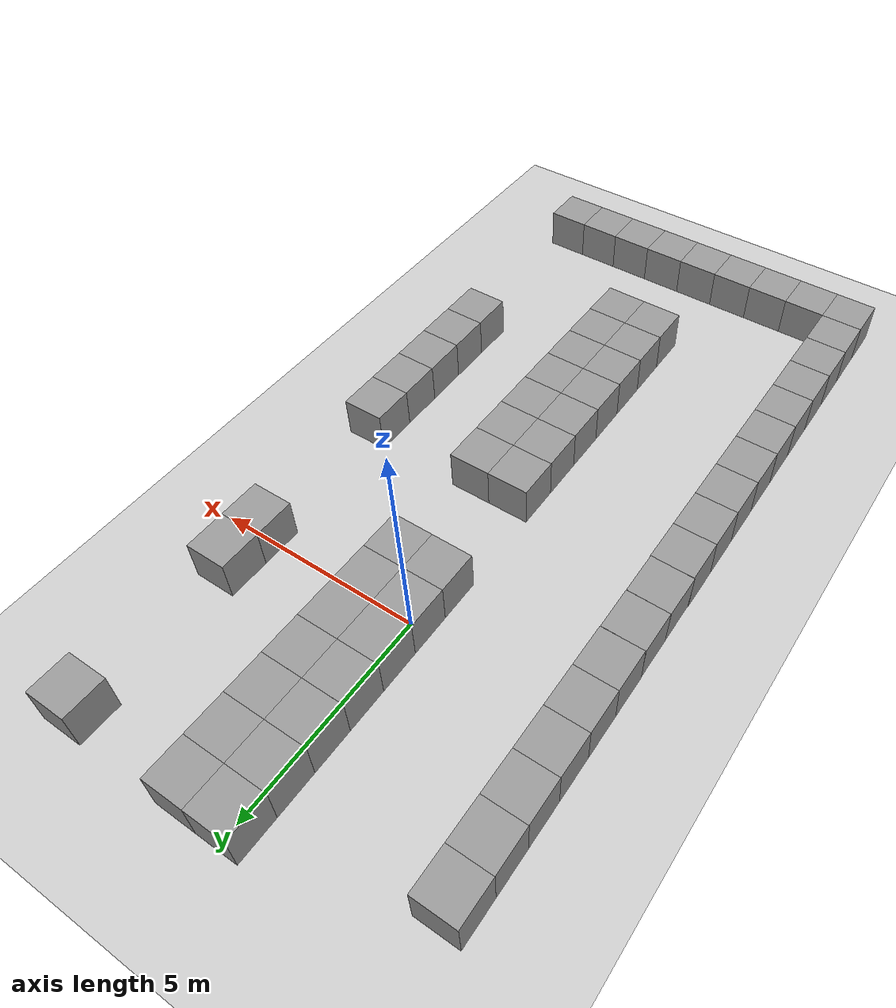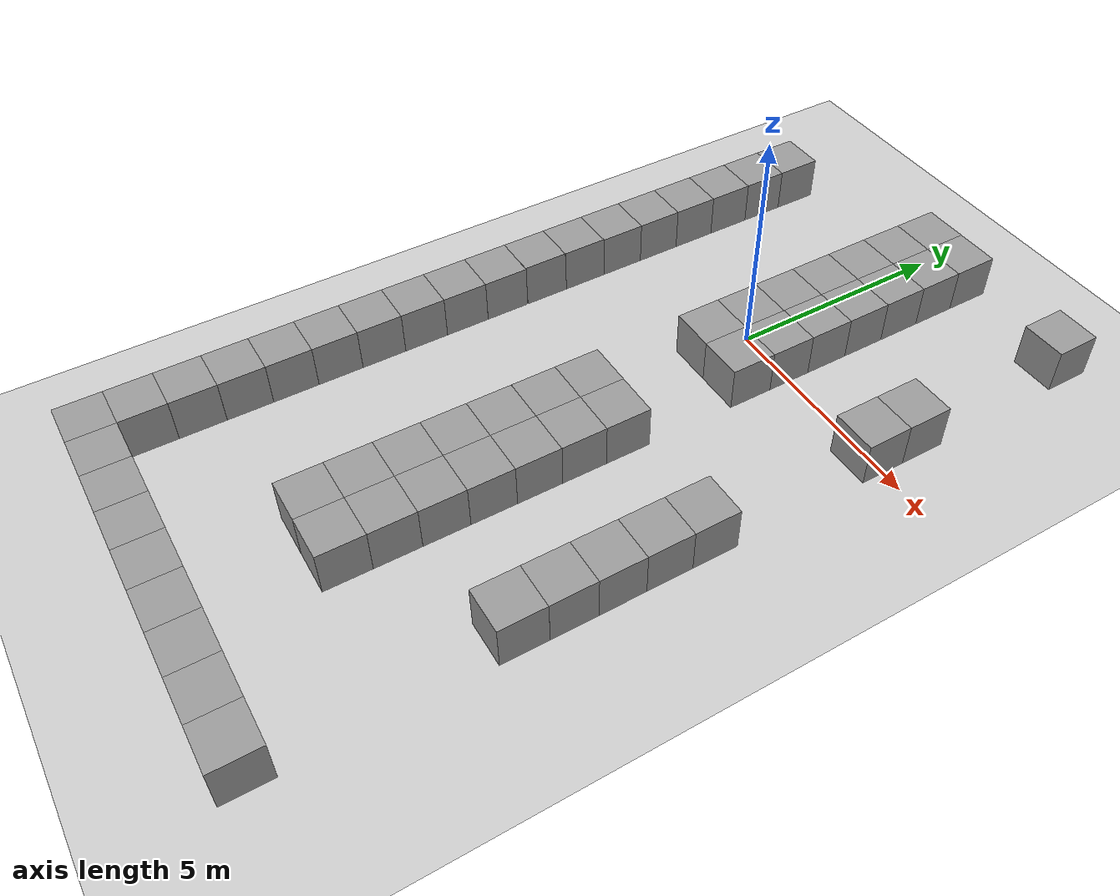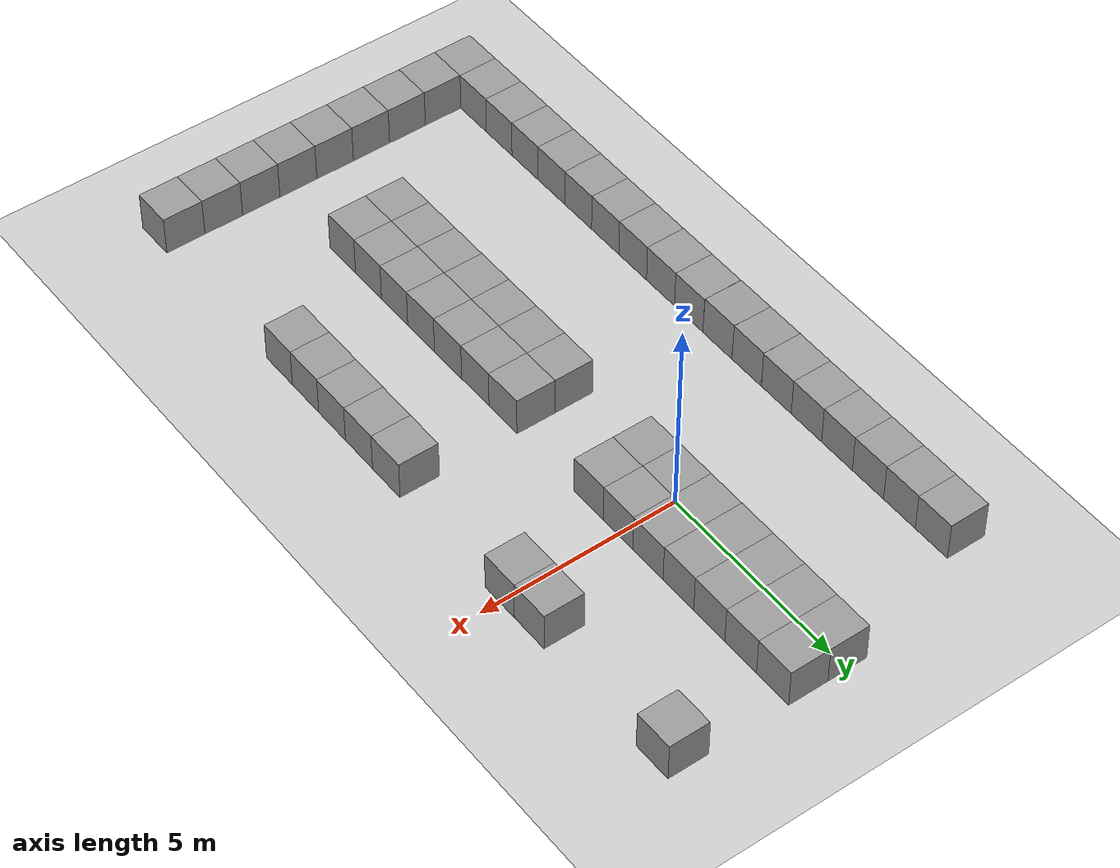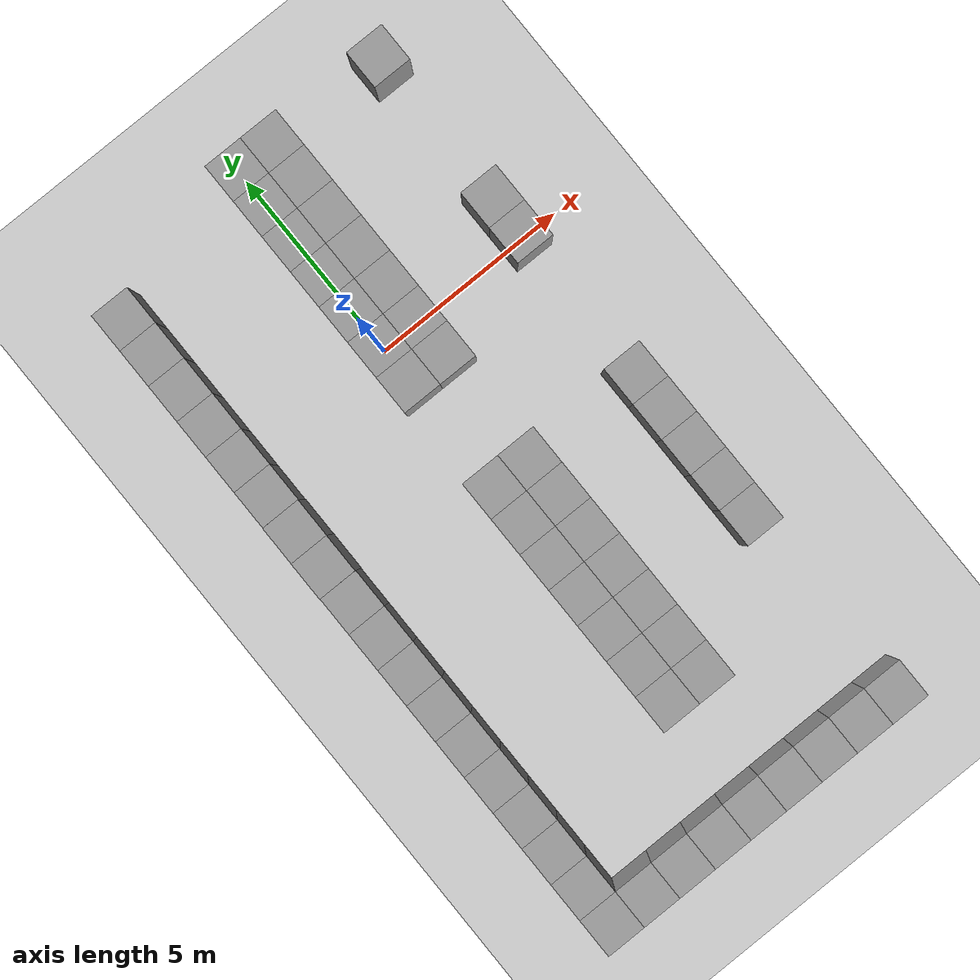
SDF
<sdf version="1.4">
 <world name="default">
  <model name="ground_plane">
   <static>1</static>
   <link name="link">
    <collision name="collision">
     <geometry><plane><normal>0 0 1</normal><size>100 100</size></plane></geometry>
     <surface><friction><ode><mu>100</mu><mu2>50</mu2></ode></friction></surface>
    </collision>
    <visual name="visual">
     <cast_shadows>0</cast_shadows>
     <geometry><plane><normal>0 0 1</normal><size>100 100</size></plane></geometry>
     <material>
      <script><uri>file://media/materials/scripts/gazebo.material</uri><name>Gazebo/Grey</name></script>
     </material>
    </visual>
    <velocity_decay><linear>0</linear><angular>0</angular></velocity_decay>
   </link>
  </model>
  <model name="unit_box_251">
   <pose>-4.00002 -13 0.5 1.61559e-27 -1e-06 -1.2e-05</pose>
   <static>1</static>
   <link name="link">
    <inertial>
     <mass>1</mass>
     <inertia><ixx>1</ixx><ixy>0</ixy><ixz>0</ixz><iyy>1</iyy><iyz>0</iyz><izz>1</izz></inertia>
    </inertial>
    <collision name="collision"><geometry><box><size>1 1 1</size></box></geometry></collision>
    <visual name="visual">
     <geometry><box><size>1 1 1</size></box></geometry>
     <material>
      <script><uri>file://media/materials/scripts/gazebo.material</uri><name>Gazebo/Grey</name></script>
     </material>
    </visual>
    <velocity_decay><linear>0</linear><angular>0</angular></velocity_decay>
   </link>
   <static>1</static>
  </model>
  <model name="unit_box_252">
   <pose>-3.00002 -13 0.5 0 0 -1.1e-05</pose>
   <static>1</static>
   <link name="link">
    <inertial>
     <mass>1</mass>
     <inertia><ixx>1</ixx><ixy>0</ixy><ixz>0</ixz><iyy>1</iyy><iyz>0</iyz><izz>1</izz></inertia>
    </inertial>
    <collision name="collision"><geometry><box><size>1 1 1</size></box></geometry></collision>
    <visual name="visual">
     <geometry><box><size>1 1 1</size></box></geometry>
     <material>
      <script><uri>file://media/materials/scripts/gazebo.material</uri><name>Gazebo/Grey</name></script>
     </material>
    </visual>
    <velocity_decay><linear>0</linear><angular>0</angular></velocity_decay>
   </link>
   <static>1</static>
  </model>
  <model name="unit_box_253">
   <pose>-2.00001 -13 0.5 0 0 -1e-05</pose>
   <static>1</static>
   <link name="link">
    <inertial>
     <mass>1</mass>
     <inertia><ixx>1</ixx><ixy>0</ixy><ixz>0</ixz><iyy>1</iyy><iyz>0</iyz><izz>1</izz></inertia>
    </inertial>
    <collision name="collision"><geometry><box><size>1 1 1</size></box></geometry></collision>
    <visual name="visual">
     <geometry><box><size>1 1 1</size></box></geometry>
     <material>
      <script><uri>file://media/materials/scripts/gazebo.material</uri><name>Gazebo/Grey</name></script>
     </material>
    </visual>
    <velocity_decay><linear>0</linear><angular>0</angular></velocity_decay>
   </link>
   <static>1</static>
  </model>
  <model name="unit_box_254">
   <pose>-1.00001 -13 0.5 0 0 -1e-05</pose>
   <static>1</static>
   <link name="link">
    <inertial>
     <mass>1</mass>
     <inertia><ixx>1</ixx><ixy>0</ixy><ixz>0</ixz><iyy>1</iyy><iyz>0</iyz><izz>1</izz></inertia>
    </inertial>
    <collision name="collision"><geometry><box><size>1 1 1</size></box></geometry></collision>
    <visual name="visual">
     <geometry><box><size>1 1 1</size></box></geometry>
     <material>
      <script><uri>file://media/materials/scripts/gazebo.material</uri><name>Gazebo/Grey</name></script>
     </material>
    </visual>
    <velocity_decay><linear>0</linear><angular>0</angular></velocity_decay>
   </link>
   <static>1</static>
  </model>
  <model name="unit_box_255">
   <pose>-1.2e-05 -12.9999 0.5 0 0 -8e-06</pose>
   <static>1</static>
   <link name="link">
    <inertial>
     <mass>1</mass>
     <inertia><ixx>1</ixx><ixy>0</ixy><ixz>0</ixz><iyy>1</iyy><iyz>0</iyz><izz>1</izz></inertia>
    </inertial>
    <collision name="collision"><geometry><box><size>1 1 1</size></box></geometry></collision>
    <visual name="visual">
     <geometry><box><size>1 1 1</size></box></geometry>
     <material>
      <script><uri>file://media/materials/scripts/gazebo.material</uri><name>Gazebo/Grey</name></script>
     </material>
    </visual>
    <velocity_decay><linear>0</linear><angular>0</angular></velocity_decay>
   </link>
   <static>1</static>
  </model>
  <model name="unit_box_256">
   <pose>0.999991 -12.9999 0.5 0 0 -7e-06</pose>
   <static>1</static>
   <link name="link">
    <inertial>
     <mass>1</mass>
     <inertia><ixx>1</ixx><ixy>0</ixy><ixz>0</ixz><iyy>1</iyy><iyz>0</iyz><izz>1</izz></inertia>
    </inertial>
    <collision name="collision"><geometry><box><size>1 1 1</size></box></geometry></collision>
    <visual name="visual">
     <geometry><box><size>1 1 1</size></box></geometry>
     <material>
      <script><uri>file://media/materials/scripts/gazebo.material</uri><name>Gazebo/Grey</name></script>
     </material>
    </visual>
    <velocity_decay><linear>0</linear><angular>0</angular></velocity_decay>
   </link>
   <static>1</static>
  </model>
  <model name="unit_box_257">
   <pose>1.99999 -12.9999 0.5 0 0 -7e-06</pose>
   <static>1</static>
   <link name="link">
    <inertial>
     <mass>1</mass>
     <inertia><ixx>1</ixx><ixy>0</ixy><ixz>0</ixz><iyy>1</iyy><iyz>0</iyz><izz>1</izz></inertia>
    </inertial>
    <collision name="collision"><geometry><box><size>1 1 1</size></box></geometry></collision>
    <visual name="visual">
     <geometry><box><size>1 1 1</size></box></geometry>
     <material>
      <script><uri>file://media/materials/scripts/gazebo.material</uri><name>Gazebo/Grey</name></script>
     </material>
    </visual>
    <velocity_decay><linear>0</linear><angular>0</angular></velocity_decay>
   </link>
   <static>1</static>
  </model>
  <model name="unit_box_258">
   <pose>2.99999 -12.9999 0.5 0 0 -5e-06</pose>
   <static>1</static>
   <link name="link">
    <inertial>
     <mass>1</mass>
     <inertia><ixx>1</ixx><ixy>0</ixy><ixz>0</ixz><iyy>1</iyy><iyz>0</iyz><izz>1</izz></inertia>
    </inertial>
    <collision name="collision"><geometry><box><size>1 1 1</size></box></geometry></collision>
    <visual name="visual">
     <geometry><box><size>1 1 1</size></box></geometry>
     <material>
      <script><uri>file://media/materials/scripts/gazebo.material</uri><name>Gazebo/Grey</name></script>
     </material>
    </visual>
    <velocity_decay><linear>0</linear><angular>0</angular></velocity_decay>
   </link>
   <static>1</static>
  </model>
  <model name="unit_box_259">
   <pose>4 -13 0.5 0 0 -5e-06</pose>
   <static>1</static>
   <link name="link">
    <inertial>
     <mass>1</mass>
     <inertia><ixx>1</ixx><ixy>0</ixy><ixz>0</ixz><iyy>1</iyy><iyz>0</iyz><izz>1</izz></inertia>
    </inertial>
    <collision name="collision"><geometry><box><size>1 1 1</size></box></geometry></collision>
    <visual name="visual">
     <geometry><box><size>1 1 1</size></box></geometry>
     <material>
      <script><uri>file://media/materials/scripts/gazebo.material</uri><name>Gazebo/Grey</name></script>
     </material>
    </visual>
    <velocity_decay><linear>0</linear><angular>0</angular></velocity_decay>
   </link>
   <static>1</static>
  </model>
  <model name="unit_box_29_0">
   <pose>-4.00004 -12 0.5 0 0 -4.6e-05</pose>
   <link name="link">
    <inertial>
     <mass>1</mass>
     <inertia><ixx>1</ixx><ixy>0</ixy><ixz>0</ixz><iyy>1</iyy><iyz>0</iyz><izz>1</izz></inertia>
    </inertial>
    <collision name="collision"><geometry><box><size>1 1 1</size></box></geometry></collision>
    <visual name="visual">
     <geometry><box><size>1 1 1</size></box></geometry>
     <material>
      <script><uri>file://media/materials/scripts/gazebo.material</uri><name>Gazebo/Grey</name></script>
     </material>
    </visual>
    <velocity_decay><linear>0</linear><angular>0</angular></velocity_decay>
   </link>
   <static>1</static>
  </model>
  <model name="unit_box_44_0">
   <pose>-3.99998 -11 0.5 0 0 -7.9e-05</pose>
   <link name="link">
    <inertial>
     <mass>1</mass>
     <inertia><ixx>1</ixx><ixy>0</ixy><ixz>0</ixz><iyy>1</iyy><iyz>0</iyz><izz>1</izz></inertia>
    </inertial>
    <collision name="collision"><geometry><box><size>1 1 1</size></box></geometry></collision>
    <visual name="visual">
     <geometry><box><size>1 1 1</size></box></geometry>
     <material>
      <script><uri>file://media/materials/scripts/gazebo.material</uri><name>Gazebo/Grey</name></script>
     </material>
    </visual>
    <velocity_decay><linear>0</linear><angular>0</angular></velocity_decay>
   </link>
   <static>1</static>
  </model>
  <model name="unit_box_45_0">
   <pose>-3.99957 -9.99996 0.5 0 0 -7.8e-05</pose>
   <link name="link">
    <inertial>
     <mass>1</mass>
     <inertia><ixx>1</ixx><ixy>0</ixy><ixz>0</ixz><iyy>1</iyy><iyz>0</iyz><izz>1</izz></inertia>
    </inertial>
    <collision name="collision"><geometry><box><size>1 1 1</size></box></geometry></collision>
    <visual name="visual">
     <geometry><box><size>1 1 1</size></box></geometry>
     <material>
      <script><uri>file://media/materials/scripts/gazebo.material</uri><name>Gazebo/Grey</name></script>
     </material>
    </visual>
    <velocity_decay><linear>0</linear><angular>0</angular></velocity_decay>
   </link>
   <static>1</static>
  </model>
  <model name="unit_box_46_0">
   <pose>-3.99972 -8.99996 0.5 0 0 -7.9e-05</pose>
   <link name="link">
    <inertial>
     <mass>1</mass>
     <inertia><ixx>1</ixx><ixy>0</ixy><ixz>0</ixz><iyy>1</iyy><iyz>0</iyz><izz>1</izz></inertia>
    </inertial>
    <collision name="collision"><geometry><box><size>1 1 1</size></box></geometry></collision>
    <visual name="visual">
     <geometry><box><size>1 1 1</size></box></geometry>
     <material>
      <script><uri>file://media/materials/scripts/gazebo.material</uri><name>Gazebo/Grey</name></script>
     </material>
    </visual>
    <velocity_decay><linear>0</linear><angular>0</angular></velocity_decay>
   </link>
   <static>1</static>
  </model>
  <model name="unit_box_47_0">
   <pose>-3.99969 -7.99996 0.5 0 0 -7.9e-05</pose>
   <link name="link">
    <inertial>
     <mass>1</mass>
     <inertia><ixx>1</ixx><ixy>0</ixy><ixz>0</ixz><iyy>1</iyy><iyz>0</iyz><izz>1</izz></inertia>
    </inertial>
    <collision name="collision"><geometry><box><size>1 1 1</size></box></geometry></collision>
    <visual name="visual">
     <geometry><box><size>1 1 1</size></box></geometry>
     <material>
      <script><uri>file://media/materials/scripts/gazebo.material</uri><name>Gazebo/Grey</name></script>
     </material>
    </visual>
    <velocity_decay><linear>0</linear><angular>0</angular></velocity_decay>
   </link>
   <static>1</static>
  </model>
  <model name="unit_box_48_0">
   <pose>-3.99926 -6.99996 0.5 0 0 -7.9e-05</pose>
   <link name="link">
    <inertial>
     <mass>1</mass>
     <inertia><ixx>1</ixx><ixy>0</ixy><ixz>0</ixz><iyy>1</iyy><iyz>0</iyz><izz>1</izz></inertia>
    </inertial>
    <collision name="collision"><geometry><box><size>1 1 1</size></box></geometry></collision>
    <visual name="visual">
     <geometry><box><size>1 1 1</size></box></geometry>
     <material>
      <script><uri>file://media/materials/scripts/gazebo.material</uri><name>Gazebo/Grey</name></script>
     </material>
    </visual>
    <velocity_decay><linear>0</linear><angular>0</angular></velocity_decay>
   </link>
   <static>1</static>
  </model>
  <model name="unit_box_49_0">
   <pose>-3.99936 -5.99995 0.5 0 0 -8.2e-05</pose>
   <link name="link">
    <inertial>
     <mass>1</mass>
     <inertia><ixx>1</ixx><ixy>0</ixy><ixz>0</ixz><iyy>1</iyy><iyz>0</iyz><izz>1</izz></inertia>
    </inertial>
    <collision name="collision"><geometry><box><size>1 1 1</size></box></geometry></collision>
    <visual name="visual">
     <geometry><box><size>1 1 1</size></box></geometry>
     <material>
      <script><uri>file://media/materials/scripts/gazebo.material</uri><name>Gazebo/Grey</name></script>
     </material>
    </visual>
    <velocity_decay><linear>0</linear><angular>0</angular></velocity_decay>
   </link>
   <static>1</static>
  </model>
  <model name="unit_box_50_0">
   <pose>-3.99937 -4.99995 0.5 0 0 -8.2e-05</pose>
   <link name="link">
    <inertial>
     <mass>1</mass>
     <inertia><ixx>1</ixx><ixy>0</ixy><ixz>0</ixz><iyy>1</iyy><iyz>0</iyz><izz>1</izz></inertia>
    </inertial>
    <collision name="collision"><geometry><box><size>1 1 1</size></box></geometry></collision>
    <visual name="visual">
     <geometry><box><size>1 1 1</size></box></geometry>
     <material>
      <script><uri>file://media/materials/scripts/gazebo.material</uri><name>Gazebo/Grey</name></script>
     </material>
    </visual>
    <velocity_decay><linear>0</linear><angular>0</angular></velocity_decay>
   </link>
   <static>1</static>
  </model>
  <model name="unit_box_51_0">
   <pose>-3.99952 -3.99982 0.5 0 -0 0.000178</pose>
   <link name="link">
    <inertial>
     <mass>1</mass>
     <inertia><ixx>1</ixx><ixy>0</ixy><ixz>0</ixz><iyy>1</iyy><iyz>0</iyz><izz>1</izz></inertia>
    </inertial>
    <collision name="collision"><geometry><box><size>1 1 1</size></box></geometry></collision>
    <visual name="visual">
     <geometry><box><size>1 1 1</size></box></geometry>
     <material>
      <script><uri>file://media/materials/scripts/gazebo.material</uri><name>Gazebo/Grey</name></script>
     </material>
    </visual>
    <velocity_decay><linear>0</linear><angular>0</angular></velocity_decay>
   </link>
   <static>1</static>
  </model>
  <model name="unit_box_53_0">
   <pose>0.999998 -9.99989 0.5 0 0 -8e-06</pose>
   <link name="link">
    <inertial>
     <mass>1</mass>
     <inertia><ixx>1</ixx><ixy>0</ixy><ixz>0</ixz><iyy>1</iyy><iyz>0</iyz><izz>1</izz></inertia>
    </inertial>
    <collision name="collision"><geometry><box><size>1 1 1</size></box></geometry></collision>
    <visual name="visual">
     <geometry><box><size>1 1 1</size></box></geometry>
     <material>
      <script><uri>file://media/materials/scripts/gazebo.material</uri><name>Gazebo/Grey</name></script>
     </material>
    </visual>
    <velocity_decay><linear>0</linear><angular>0</angular></velocity_decay>
   </link>
   <static>1</static>
  </model>
  <model name="unit_box_54_0">
   <pose>1.00002 -8.99989 0.5 0 0 -8e-06</pose>
   <link name="link">
    <inertial>
     <mass>1</mass>
     <inertia><ixx>1</ixx><ixy>0</ixy><ixz>0</ixz><iyy>1</iyy><iyz>0</iyz><izz>1</izz></inertia>
    </inertial>
    <collision name="collision"><geometry><box><size>1 1 1</size></box></geometry></collision>
    <visual name="visual">
     <geometry><box><size>1 1 1</size></box></geometry>
     <material>
      <script><uri>file://media/materials/scripts/gazebo.material</uri><name>Gazebo/Grey</name></script>
     </material>
    </visual>
    <velocity_decay><linear>0</linear><angular>0</angular></velocity_decay>
   </link>
   <static>1</static>
  </model>
  <model name="unit_box_55_0">
   <pose>1 -7.99989 0.5 0 0 -8e-06</pose>
   <link name="link">
    <inertial>
     <mass>1</mass>
     <inertia><ixx>1</ixx><ixy>0</ixy><ixz>0</ixz><iyy>1</iyy><iyz>0</iyz><izz>1</izz></inertia>
    </inertial>
    <collision name="collision"><geometry><box><size>1 1 1</size></box></geometry></collision>
    <visual name="visual">
     <geometry><box><size>1 1 1</size></box></geometry>
     <material>
      <script><uri>file://media/materials/scripts/gazebo.material</uri><name>Gazebo/Grey</name></script>
     </material>
    </visual>
    <velocity_decay><linear>0</linear><angular>0</angular></velocity_decay>
   </link>
   <static>1</static>
  </model>
  <model name="unit_box_56_0">
   <pose>1.00001 -6.99989 0.5 0 0 -7e-06</pose>
   <link name="link">
    <inertial>
     <mass>1</mass>
     <inertia><ixx>1</ixx><ixy>0</ixy><ixz>0</ixz><iyy>1</iyy><iyz>0</iyz><izz>1</izz></inertia>
    </inertial>
    <collision name="collision"><geometry><box><size>1 1 1</size></box></geometry></collision>
    <visual name="visual">
     <geometry><box><size>1 1 1</size></box></geometry>
     <material>
      <script><uri>file://media/materials/scripts/gazebo.material</uri><name>Gazebo/Grey</name></script>
     </material>
    </visual>
    <velocity_decay><linear>0</linear><angular>0</angular></velocity_decay>
   </link>
   <static>1</static>
  </model>
  <model name="unit_box_57_0">
   <pose>1 -5.99988 0.5 0 0 -5e-06</pose>
   <link name="link">
    <inertial>
     <mass>1</mass>
     <inertia><ixx>1</ixx><ixy>0</ixy><ixz>0</ixz><iyy>1</iyy><iyz>0</iyz><izz>1</izz></inertia>
    </inertial>
    <collision name="collision"><geometry><box><size>1 1 1</size></box></geometry></collision>
    <visual name="visual">
     <geometry><box><size>1 1 1</size></box></geometry>
     <material>
      <script><uri>file://media/materials/scripts/gazebo.material</uri><name>Gazebo/Grey</name></script>
     </material>
    </visual>
    <velocity_decay><linear>0</linear><angular>0</angular></velocity_decay>
   </link>
   <static>1</static>
  </model>
  <model name="unit_box_58_0">
   <pose>1 -4.99988 0.5 0 0 -5e-06</pose>
   <link name="link">
    <inertial>
     <mass>1</mass>
     <inertia><ixx>1</ixx><ixy>0</ixy><ixz>0</ixz><iyy>1</iyy><iyz>0</iyz><izz>1</izz></inertia>
    </inertial>
    <collision name="collision"><geometry><box><size>1 1 1</size></box></geometry></collision>
    <visual name="visual">
     <geometry><box><size>1 1 1</size></box></geometry>
     <material>
      <script><uri>file://media/materials/scripts/gazebo.material</uri><name>Gazebo/Grey</name></script>
     </material>
    </visual>
    <velocity_decay><linear>0</linear><angular>0</angular></velocity_decay>
   </link>
   <static>1</static>
  </model>
  <model name="unit_box_59_0">
   <pose>1.00001 -3.99988 0.5 0 0 -4e-06</pose>
   <link name="link">
    <inertial>
     <mass>1</mass>
     <inertia><ixx>1</ixx><ixy>0</ixy><ixz>0</ixz><iyy>1</iyy><iyz>0</iyz><izz>1</izz></inertia>
    </inertial>
    <collision name="collision"><geometry><box><size>1 1 1</size></box></geometry></collision>
    <visual name="visual">
     <geometry><box><size>1 1 1</size></box></geometry>
     <material>
      <script><uri>file://media/materials/scripts/gazebo.material</uri><name>Gazebo/Grey</name></script>
     </material>
    </visual>
    <velocity_decay><linear>0</linear><angular>0</angular></velocity_decay>
   </link>
   <static>1</static>
  </model>
  <model name="unit_box_60_0">
   <pose>-4 -1.00001 0.5 0 0 -3e-06</pose>
   <link name="link">
    <inertial>
     <mass>1</mass>
     <inertia><ixx>1</ixx><ixy>0</ixy><ixz>0</ixz><iyy>1</iyy><iyz>0</iyz><izz>1</izz></inertia>
    </inertial>
    <collision name="collision"><geometry><box><size>1 1 1</size></box></geometry></collision>
    <visual name="visual">
     <geometry><box><size>1 1 1</size></box></geometry>
     <material>
      <script><uri>file://media/materials/scripts/gazebo.material</uri><name>Gazebo/Grey</name></script>
     </material>
    </visual>
    <velocity_decay><linear>0</linear><angular>0</angular></velocity_decay>
   </link>
   <static>1</static>
  </model>
  <model name="unit_box_61_0">
   <pose>-4 -6e-06 0.5 0 0 -3e-06</pose>
   <link name="link">
    <inertial>
     <mass>1</mass>
     <inertia><ixx>1</ixx><ixy>0</ixy><ixz>0</ixz><iyy>1</iyy><iyz>0</iyz><izz>1</izz></inertia>
    </inertial>
    <collision name="collision"><geometry><box><size>1 1 1</size></box></geometry></collision>
    <visual name="visual">
     <geometry><box><size>1 1 1</size></box></geometry>
     <material>
      <script><uri>file://media/materials/scripts/gazebo.material</uri><name>Gazebo/Grey</name></script>
     </material>
    </visual>
    <velocity_decay><linear>0</linear><angular>0</angular></velocity_decay>
   </link>
   <static>1</static>
  </model>
  <model name="unit_box_62_0">
   <pose>-3.99999 0.999997 0.5 0 0 -5e-06</pose>
   <link name="link">
    <inertial>
     <mass>1</mass>
     <inertia><ixx>1</ixx><ixy>0</ixy><ixz>0</ixz><iyy>1</iyy><iyz>0</iyz><izz>1</izz></inertia>
    </inertial>
    <collision name="collision"><geometry><box><size>1 1 1</size></box></geometry></collision>
    <visual name="visual">
     <geometry><box><size>1 1 1</size></box></geometry>
     <material>
      <script><uri>file://media/materials/scripts/gazebo.material</uri><name>Gazebo/Grey</name></script>
     </material>
    </visual>
    <velocity_decay><linear>0</linear><angular>0</angular></velocity_decay>
   </link>
   <static>1</static>
  </model>
  <model name="unit_box_63_0">
   <pose>-3.99999 2 0.5 0 0 -5e-06</pose>
   <link name="link">
    <inertial>
     <mass>1</mass>
     <inertia><ixx>1</ixx><ixy>0</ixy><ixz>0</ixz><iyy>1</iyy><iyz>0</iyz><izz>1</izz></inertia>
    </inertial>
    <collision name="collision"><geometry><box><size>1 1 1</size></box></geometry></collision>
    <visual name="visual">
     <geometry><box><size>1 1 1</size></box></geometry>
     <material>
      <script><uri>file://media/materials/scripts/gazebo.material</uri><name>Gazebo/Grey</name></script>
     </material>
    </visual>
    <velocity_decay><linear>0</linear><angular>0</angular></velocity_decay>
   </link>
   <static>1</static>
  </model>
  <model name="unit_box_64_0">
   <pose>-4.00001 3 0.5 0 0 -4e-06</pose>
   <link name="link">
    <inertial>
     <mass>1</mass>
     <inertia><ixx>1</ixx><ixy>0</ixy><ixz>0</ixz><iyy>1</iyy><iyz>0</iyz><izz>1</izz></inertia>
    </inertial>
    <collision name="collision"><geometry><box><size>1 1 1</size></box></geometry></collision>
    <visual name="visual">
     <geometry><box><size>1 1 1</size></box></geometry>
     <material>
      <script><uri>file://media/materials/scripts/gazebo.material</uri><name>Gazebo/Grey</name></script>
     </material>
    </visual>
    <velocity_decay><linear>0</linear><angular>0</angular></velocity_decay>
   </link>
   <static>1</static>
  </model>
  <model name="unit_box_65_0">
   <pose>-4 4 0.5 0 0 -3e-06</pose>
   <link name="link">
    <inertial>
     <mass>1</mass>
     <inertia><ixx>1</ixx><ixy>0</ixy><ixz>0</ixz><iyy>1</iyy><iyz>0</iyz><izz>1</izz></inertia>
    </inertial>
    <collision name="collision"><geometry><box><size>1 1 1</size></box></geometry></collision>
    <visual name="visual">
     <geometry><box><size>1 1 1</size></box></geometry>
     <material>
      <script><uri>file://media/materials/scripts/gazebo.material</uri><name>Gazebo/Grey</name></script>
     </material>
    </visual>
    <velocity_decay><linear>0</linear><angular>0</angular></velocity_decay>
   </link>
   <static>1</static>
  </model>
  <model name="unit_box_90_0">
   <pose>1.00001 -1.00001 0.5 0 -0 0</pose>
   <link name="link">
    <inertial>
     <mass>1</mass>
     <inertia><ixx>1</ixx><ixy>0</ixy><ixz>0</ixz><iyy>1</iyy><iyz>0</iyz><izz>1</izz></inertia>
    </inertial>
    <collision name="collision"><geometry><box><size>1 1 1</size></box></geometry></collision>
    <visual name="visual">
     <geometry><box><size>1 1 1</size></box></geometry>
     <material>
      <script><uri>file://media/materials/scripts/gazebo.material</uri><name>Gazebo/Grey</name></script>
     </material>
    </visual>
    <velocity_decay><linear>0</linear><angular>0</angular></velocity_decay>
   </link>
   <static>1</static>
  </model>
  <model name="unit_box_91_0">
   <pose>1.00001 -1e-05 0.5 0 -0 1e-06</pose>
   <link name="link">
    <inertial>
     <mass>1</mass>
     <inertia><ixx>1</ixx><ixy>0</ixy><ixz>0</ixz><iyy>1</iyy><iyz>0</iyz><izz>1</izz></inertia>
    </inertial>
    <collision name="collision"><geometry><box><size>1 1 1</size></box></geometry></collision>
    <visual name="visual">
     <geometry><box><size>1 1 1</size></box></geometry>
     <material>
      <script><uri>file://media/materials/scripts/gazebo.material</uri><name>Gazebo/Grey</name></script>
     </material>
    </visual>
    <velocity_decay><linear>0</linear><angular>0</angular></velocity_decay>
   </link>
   <static>1</static>
  </model>
  <model name="unit_box_92_0">
   <pose>1.00001 0.99999 0.5 0 -0 0</pose>
   <link name="link">
    <inertial>
     <mass>1</mass>
     <inertia><ixx>1</ixx><ixy>0</ixy><ixz>0</ixz><iyy>1</iyy><iyz>0</iyz><izz>1</izz></inertia>
    </inertial>
    <collision name="collision"><geometry><box><size>1 1 1</size></box></geometry></collision>
    <visual name="visual">
     <geometry><box><size>1 1 1</size></box></geometry>
     <material>
      <script><uri>file://media/materials/scripts/gazebo.material</uri><name>Gazebo/Grey</name></script>
     </material>
    </visual>
    <velocity_decay><linear>0</linear><angular>0</angular></velocity_decay>
   </link>
   <static>1</static>
  </model>
  <model name="unit_box_93_0">
   <pose>1 1.99999 0.5 0 -0 2e-06</pose>
   <link name="link">
    <inertial>
     <mass>1</mass>
     <inertia><ixx>1</ixx><ixy>0</ixy><ixz>0</ixz><iyy>1</iyy><iyz>0</iyz><izz>1</izz></inertia>
    </inertial>
    <collision name="collision"><geometry><box><size>1 1 1</size></box></geometry></collision>
    <visual name="visual">
     <geometry><box><size>1 1 1</size></box></geometry>
     <material>
      <script><uri>file://media/materials/scripts/gazebo.material</uri><name>Gazebo/Grey</name></script>
     </material>
    </visual>
    <velocity_decay><linear>0</linear><angular>0</angular></velocity_decay>
   </link>
   <static>1</static>
  </model>
  <model name="unit_box_94_0">
   <pose>0.999999 3 0.5 0 -0 0</pose>
   <link name="link">
    <inertial>
     <mass>1</mass>
     <inertia><ixx>1</ixx><ixy>0</ixy><ixz>0</ixz><iyy>1</iyy><iyz>0</iyz><izz>1</izz></inertia>
    </inertial>
    <collision name="collision"><geometry><box><size>1 1 1</size></box></geometry></collision>
    <visual name="visual">
     <geometry><box><size>1 1 1</size></box></geometry>
     <material>
      <script><uri>file://media/materials/scripts/gazebo.material</uri><name>Gazebo/Grey</name></script>
     </material>
    </visual>
    <velocity_decay><linear>0</linear><angular>0</angular></velocity_decay>
   </link>
   <static>1</static>
  </model>
  <model name="unit_box_95_0">
   <pose>1.00001 4 0.5 0 -0 1e-06</pose>
   <link name="link">
    <inertial>
     <mass>1</mass>
     <inertia><ixx>1</ixx><ixy>0</ixy><ixz>0</ixz><iyy>1</iyy><iyz>0</iyz><izz>1</izz></inertia>
    </inertial>
    <collision name="collision"><geometry><box><size>1 1 1</size></box></geometry></collision>
    <visual name="visual">
     <geometry><box><size>1 1 1</size></box></geometry>
     <material>
      <script><uri>file://media/materials/scripts/gazebo.material</uri><name>Gazebo/Grey</name></script>
     </material>
    </visual>
    <velocity_decay><linear>0</linear><angular>0</angular></velocity_decay>
   </link>
   <static>1</static>
  </model>
  <model name="unit_box_96_0">
   <pose>1.00001 5 0.5 0 -0 0</pose>
   <link name="link">
    <inertial>
     <mass>1</mass>
     <inertia><ixx>1</ixx><ixy>0</ixy><ixz>0</ixz><iyy>1</iyy><iyz>0</iyz><izz>1</izz></inertia>
    </inertial>
    <collision name="collision"><geometry><box><size>1 1 1</size></box></geometry></collision>
    <visual name="visual">
     <geometry><box><size>1 1 1</size></box></geometry>
     <material>
      <script><uri>file://media/materials/scripts/gazebo.material</uri><name>Gazebo/Grey</name></script>
     </material>
    </visual>
    <velocity_decay><linear>0</linear><angular>0</angular></velocity_decay>
   </link>
   <static>1</static>
  </model>
  <model name="unit_box_116_0">
   <pose>-1e-06 -1.00001 0.5 0 0 -2e-06</pose>
   <link name="link">
    <inertial>
     <mass>1</mass>
     <inertia><ixx>1</ixx><ixy>0</ixy><ixz>0</ixz><iyy>1</iyy><iyz>0</iyz><izz>1</izz></inertia>
    </inertial>
    <collision name="collision"><geometry><box><size>1 1 1</size></box></geometry></collision>
    <visual name="visual">
     <geometry><box><size>1 1 1</size></box></geometry>
     <material>
      <script><uri>file://media/materials/scripts/gazebo.material</uri><name>Gazebo/Grey</name></script>
     </material>
    </visual>
    <velocity_decay><linear>0</linear><angular>0</angular></velocity_decay>
   </link>
   <static>1</static>
  </model>
  <model name="unit_box_118_0">
   <pose>1e-06 -1.1e-05 0.5 0 0 -2e-06</pose>
   <link name="link">
    <inertial>
     <mass>1</mass>
     <inertia><ixx>1</ixx><ixy>0</ixy><ixz>0</ixz><iyy>1</iyy><iyz>0</iyz><izz>1</izz></inertia>
    </inertial>
    <collision name="collision"><geometry><box><size>1 1 1</size></box></geometry></collision>
    <visual name="visual">
     <geometry><box><size>1 1 1</size></box></geometry>
     <material>
      <script><uri>file://media/materials/scripts/gazebo.material</uri><name>Gazebo/Grey</name></script>
     </material>
    </visual>
    <velocity_decay><linear>0</linear><angular>0</angular></velocity_decay>
   </link>
   <static>1</static>
  </model>
  <model name="unit_box_119_0">
   <pose>-4e-06 0.999991 0.5 0 0 -2e-06</pose>
   <link name="link">
    <inertial>
     <mass>1</mass>
     <inertia><ixx>1</ixx><ixy>0</ixy><ixz>0</ixz><iyy>1</iyy><iyz>0</iyz><izz>1</izz></inertia>
    </inertial>
    <collision name="collision"><geometry><box><size>1 1 1</size></box></geometry></collision>
    <visual name="visual">
     <geometry><box><size>1 1 1</size></box></geometry>
     <material>
      <script><uri>file://media/materials/scripts/gazebo.material</uri><name>Gazebo/Grey</name></script>
     </material>
    </visual>
    <velocity_decay><linear>0</linear><angular>0</angular></velocity_decay>
   </link>
   <static>1</static>
  </model>
  <model name="unit_box_120_0">
   <pose>-5e-06 1.99999 0.5 0 0 -3e-06</pose>
   <link name="link">
    <inertial>
     <mass>1</mass>
     <inertia><ixx>1</ixx><ixy>0</ixy><ixz>0</ixz><iyy>1</iyy><iyz>0</iyz><izz>1</izz></inertia>
    </inertial>
    <collision name="collision"><geometry><box><size>1 1 1</size></box></geometry></collision>
    <visual name="visual">
     <geometry><box><size>1 1 1</size></box></geometry>
     <material>
      <script><uri>file://media/materials/scripts/gazebo.material</uri><name>Gazebo/Grey</name></script>
     </material>
    </visual>
    <velocity_decay><linear>0</linear><angular>0</angular></velocity_decay>
   </link>
   <static>1</static>
  </model>
  <model name="unit_box_121_0">
   <pose>-5e-06 3 0.5 0 0 -5e-06</pose>
   <link name="link">
    <inertial>
     <mass>1</mass>
     <inertia><ixx>1</ixx><ixy>0</ixy><ixz>0</ixz><iyy>1</iyy><iyz>0</iyz><izz>1</izz></inertia>
    </inertial>
    <collision name="collision"><geometry><box><size>1 1 1</size></box></geometry></collision>
    <visual name="visual">
     <geometry><box><size>1 1 1</size></box></geometry>
     <material>
      <script><uri>file://media/materials/scripts/gazebo.material</uri><name>Gazebo/Grey</name></script>
     </material>
    </visual>
    <velocity_decay><linear>0</linear><angular>0</angular></velocity_decay>
   </link>
   <static>1</static>
  </model>
  <model name="unit_box_122_0">
   <pose>1e-06 4 0.5 0 0 -6e-06</pose>
   <link name="link">
    <inertial>
     <mass>1</mass>
     <inertia><ixx>1</ixx><ixy>0</ixy><ixz>0</ixz><iyy>1</iyy><iyz>0</iyz><izz>1</izz></inertia>
    </inertial>
    <collision name="collision"><geometry><box><size>1 1 1</size></box></geometry></collision>
    <visual name="visual">
     <geometry><box><size>1 1 1</size></box></geometry>
     <material>
      <script><uri>file://media/materials/scripts/gazebo.material</uri><name>Gazebo/Grey</name></script>
     </material>
    </visual>
    <velocity_decay><linear>0</linear><angular>0</angular></velocity_decay>
   </link>
   <static>1</static>
  </model>
  <model name="unit_box_123_0">
   <pose>3e-06 5 0.5 0 0 -2e-06</pose>
   <link name="link">
    <inertial>
     <mass>1</mass>
     <inertia><ixx>1</ixx><ixy>0</ixy><ixz>0</ixz><iyy>1</iyy><iyz>0</iyz><izz>1</izz></inertia>
    </inertial>
    <collision name="collision"><geometry><box><size>1 1 1</size></box></geometry></collision>
    <visual name="visual">
     <geometry><box><size>1 1 1</size></box></geometry>
     <material>
      <script><uri>file://media/materials/scripts/gazebo.material</uri><name>Gazebo/Grey</name></script>
     </material>
    </visual>
    <velocity_decay><linear>0</linear><angular>0</angular></velocity_decay>
   </link>
   <static>1</static>
  </model>
  <model name="unit_box_130_0">
   <pose>4 -7.99986 0.5 0 -0 1e-06</pose>
   <link name="link">
    <inertial>
     <mass>1</mass>
     <inertia><ixx>1</ixx><ixy>0</ixy><ixz>0</ixz><iyy>1</iyy><iyz>0</iyz><izz>1</izz></inertia>
    </inertial>
    <collision name="collision"><geometry><box><size>1 1 1</size></box></geometry></collision>
    <visual name="visual">
     <geometry><box><size>1 1 1</size></box></geometry>
     <material>
      <script><uri>file://media/materials/scripts/gazebo.material</uri><name>Gazebo/Grey</name></script>
     </material>
    </visual>
    <velocity_decay><linear>0</linear><angular>0</angular></velocity_decay>
   </link>
   <static>1</static>
  </model>
  <model name="unit_box_131_0">
   <pose>4 -6.99985 0.5 0 -0 2e-06</pose>
   <link name="link">
    <inertial>
     <mass>1</mass>
     <inertia><ixx>1</ixx><ixy>0</ixy><ixz>0</ixz><iyy>1</iyy><iyz>0</iyz><izz>1</izz></inertia>
    </inertial>
    <collision name="collision"><geometry><box><size>1 1 1</size></box></geometry></collision>
    <visual name="visual">
     <geometry><box><size>1 1 1</size></box></geometry>
     <material>
      <script><uri>file://media/materials/scripts/gazebo.material</uri><name>Gazebo/Grey</name></script>
     </material>
    </visual>
    <velocity_decay><linear>0</linear><angular>0</angular></velocity_decay>
   </link>
   <static>1</static>
  </model>
  <model name="unit_box_132_0">
   <pose>4 -5.99984 0.5 0 -0 7e-06</pose>
   <link name="link">
    <inertial>
     <mass>1</mass>
     <inertia><ixx>1</ixx><ixy>0</ixy><ixz>0</ixz><iyy>1</iyy><iyz>0</iyz><izz>1</izz></inertia>
    </inertial>
    <collision name="collision"><geometry><box><size>1 1 1</size></box></geometry></collision>
    <visual name="visual">
     <geometry><box><size>1 1 1</size></box></geometry>
     <material>
      <script><uri>file://media/materials/scripts/gazebo.material</uri><name>Gazebo/Grey</name></script>
     </material>
    </visual>
    <velocity_decay><linear>0</linear><angular>0</angular></velocity_decay>
   </link>
   <static>1</static>
  </model>
  <model name="unit_box_133_0">
   <pose>3.99999 -4.99983 0.5 0 -0 0</pose>
   <link name="link">
    <inertial>
     <mass>1</mass>
     <inertia><ixx>1</ixx><ixy>0</ixy><ixz>0</ixz><iyy>1</iyy><iyz>0</iyz><izz>1</izz></inertia>
    </inertial>
    <collision name="collision"><geometry><box><size>1 1 1</size></box></geometry></collision>
    <visual name="visual">
     <geometry><box><size>1 1 1</size></box></geometry>
     <material>
      <script><uri>file://media/materials/scripts/gazebo.material</uri><name>Gazebo/Grey</name></script>
     </material>
    </visual>
    <velocity_decay><linear>0</linear><angular>0</angular></velocity_decay>
   </link>
   <static>1</static>
  </model>
  <model name="unit_box_134_0">
   <pose>4 -3.99983 0.5 0 -0 0</pose>
   <link name="link">
    <inertial>
     <mass>1</mass>
     <inertia><ixx>1</ixx><ixy>0</ixy><ixz>0</ixz><iyy>1</iyy><iyz>0</iyz><izz>1</izz></inertia>
    </inertial>
    <collision name="collision"><geometry><box><size>1 1 1</size></box></geometry></collision>
    <visual name="visual">
     <geometry><box><size>1 1 1</size></box></geometry>
     <material>
      <script><uri>file://media/materials/scripts/gazebo.material</uri><name>Gazebo/Grey</name></script>
     </material>
    </visual>
    <velocity_decay><linear>0</linear><angular>0</angular></velocity_decay>
   </link>
   <static>1</static>
  </model>
  <model name="unit_box_205_0">
   <pose>3.99999 4.99999 0.5 0 -0 1e-06</pose>
   <link name="link">
    <inertial>
     <mass>1</mass>
     <inertia><ixx>1</ixx><ixy>0</ixy><ixz>0</ixz><iyy>1</iyy><iyz>0</iyz><izz>1</izz></inertia>
    </inertial>
    <collision name="collision"><geometry><box><size>1 1 1</size></box></geometry></collision>
    <visual name="visual">
     <geometry><box><size>1 1 1</size></box></geometry>
     <material>
      <script><uri>file://media/materials/scripts/gazebo.material</uri><name>Gazebo/Grey</name></script>
     </material>
    </visual>
    <velocity_decay><linear>0</linear><angular>0</angular></velocity_decay>
   </link>
   <static>1</static>
  </model>
  <model name="unit_box_207_0">
   <pose>4 1 0.5 0 -0 0</pose>
   <link name="link">
    <inertial>
     <mass>1</mass>
     <inertia><ixx>1</ixx><ixy>0</ixy><ixz>0</ixz><iyy>1</iyy><iyz>0</iyz><izz>1</izz></inertia>
    </inertial>
    <collision name="collision"><geometry><box><size>1 1 1</size></box></geometry></collision>
    <visual name="visual">
     <geometry><box><size>1 1 1</size></box></geometry>
     <material>
      <script><uri>file://media/materials/scripts/gazebo.material</uri><name>Gazebo/Grey</name></script>
     </material>
    </visual>
    <velocity_decay><linear>0</linear><angular>0</angular></velocity_decay>
   </link>
   <static>1</static>
  </model>
  <model name="unit_box_209_0">
   <pose>4 -3e-06 0.5 0 0 -3e-06</pose>
   <link name="link">
    <inertial>
     <mass>1</mass>
     <inertia><ixx>1</ixx><ixy>0</ixy><ixz>0</ixz><iyy>1</iyy><iyz>0</iyz><izz>1</izz></inertia>
    </inertial>
    <collision name="collision"><geometry><box><size>1 1 1</size></box></geometry></collision>
    <visual name="visual">
     <geometry><box><size>1 1 1</size></box></geometry>
     <material>
      <script><uri>file://media/materials/scripts/gazebo.material</uri><name>Gazebo/Grey</name></script>
     </material>
    </visual>
    <velocity_decay><linear>0</linear><angular>0</angular></velocity_decay>
   </link>
   <static>1</static>
  </model>
  <model name="unit_box_409">
   <pose>5e-06 -3.99989 0.5 0 0 -5e-06</pose>
   <link name="link">
    <inertial>
     <mass>1</mass>
     <inertia><ixx>1</ixx><ixy>0</ixy><ixz>0</ixz><iyy>1</iyy><iyz>0</iyz><izz>1</izz></inertia>
    </inertial>
    <collision name="collision"><geometry><box><size>1 1 1</size></box></geometry></collision>
    <visual name="visual">
     <geometry><box><size>1 1 1</size></box></geometry>
     <material>
      <script><uri>file://media/materials/scripts/gazebo.material</uri><name>Gazebo/Grey</name></script>
     </material>
    </visual>
    <velocity_decay><linear>0</linear><angular>0</angular></velocity_decay>
   </link>
   <static>1</static>
  </model>
  <model name="unit_box_410">
   <pose>-8e-06 -4.99989 0.5 0 0 -6e-06</pose>
   <link name="link">
    <inertial>
     <mass>1</mass>
     <inertia><ixx>1</ixx><ixy>0</ixy><ixz>0</ixz><iyy>1</iyy><iyz>0</iyz><izz>1</izz></inertia>
    </inertial>
    <collision name="collision"><geometry><box><size>1 1 1</size></box></geometry></collision>
    <visual name="visual">
     <geometry><box><size>1 1 1</size></box></geometry>
     <material>
      <script><uri>file://media/materials/scripts/gazebo.material</uri><name>Gazebo/Grey</name></script>
     </material>
    </visual>
    <velocity_decay><linear>0</linear><angular>0</angular></velocity_decay>
   </link>
   <static>1</static>
  </model>
  <model name="unit_box_411">
   <pose>-7e-06 -5.9999 0.499998 3.23117e-27 -3e-06 -8e-06</pose>
   <link name="link">
    <inertial>
     <mass>1</mass>
     <inertia><ixx>1</ixx><ixy>0</ixy><ixz>0</ixz><iyy>1</iyy><iyz>0</iyz><izz>1</izz></inertia>
    </inertial>
    <collision name="collision"><geometry><box><size>1 1 1</size></box></geometry></collision>
    <visual name="visual">
     <geometry><box><size>1 1 1</size></box></geometry>
     <material>
      <script><uri>file://media/materials/scripts/gazebo.material</uri><name>Gazebo/Grey</name></script>
     </material>
    </visual>
    <velocity_decay><linear>0</linear><angular>0</angular></velocity_decay>
   </link>
   <static>1</static>
  </model>
  <model name="unit_box_412">
   <pose>-1.3e-05 -6.9999 0.49999 0 0 -8e-06</pose>
   <link name="link">
    <inertial>
     <mass>1</mass>
     <inertia><ixx>1</ixx><ixy>0</ixy><ixz>0</ixz><iyy>1</iyy><iyz>0</iyz><izz>1</izz></inertia>
    </inertial>
    <collision name="collision"><geometry><box><size>1 1 1</size></box></geometry></collision>
    <visual name="visual">
     <geometry><box><size>1 1 1</size></box></geometry>
     <material>
      <script><uri>file://media/materials/scripts/gazebo.material</uri><name>Gazebo/Grey</name></script>
     </material>
    </visual>
    <velocity_decay><linear>0</linear><angular>0</angular></velocity_decay>
   </link>
   <static>1</static>
  </model>
  <model name="unit_box_413">
   <pose>-2.9e-05 -7.9999 0.5 0 0 -8e-06</pose>
   <link name="link">
    <inertial>
     <mass>1</mass>
     <inertia><ixx>1</ixx><ixy>0</ixy><ixz>0</ixz><iyy>1</iyy><iyz>0</iyz><izz>1</izz></inertia>
    </inertial>
    <collision name="collision"><geometry><box><size>1 1 1</size></box></geometry></collision>
    <visual name="visual">
     <geometry><box><size>1 1 1</size></box></geometry>
     <material>
      <script><uri>file://media/materials/scripts/gazebo.material</uri><name>Gazebo/Grey</name></script>
     </material>
    </visual>
    <velocity_decay><linear>0</linear><angular>0</angular></velocity_decay>
   </link>
   <static>1</static>
  </model>
  <model name="unit_box_414">
   <pose>1e-06 -8.9999 0.500001 2e-06 -0 -9e-06</pose>
   <link name="link">
    <inertial>
     <mass>1</mass>
     <inertia><ixx>1</ixx><ixy>0</ixy><ixz>0</ixz><iyy>1</iyy><iyz>0</iyz><izz>1</izz></inertia>
    </inertial>
    <collision name="collision"><geometry><box><size>1 1 1</size></box></geometry></collision>
    <visual name="visual">
     <geometry><box><size>1 1 1</size></box></geometry>
     <material>
      <script><uri>file://media/materials/scripts/gazebo.material</uri><name>Gazebo/Grey</name></script>
     </material>
    </visual>
    <velocity_decay><linear>0</linear><angular>0</angular></velocity_decay>
   </link>
   <static>1</static>
  </model>
  <model name="unit_box_415">
   <pose>-9e-06 -9.9999 0.499991 1e-06 -1e-06 -9e-06</pose>
   <link name="link">
    <inertial>
     <mass>1</mass>
     <inertia><ixx>1</ixx><ixy>0</ixy><ixz>0</ixz><iyy>1</iyy><iyz>0</iyz><izz>1</izz></inertia>
    </inertial>
    <collision name="collision"><geometry><box><size>1 1 1</size></box></geometry></collision>
    <visual name="visual">
     <geometry><box><size>1 1 1</size></box></geometry>
     <material>
      <script><uri>file://media/materials/scripts/gazebo.material</uri><name>Gazebo/Grey</name></script>
     </material>
    </visual>
    <velocity_decay><linear>0</linear><angular>0</angular></velocity_decay>
   </link>
   <static>1</static>
  </model>
  <model name="unit_box_1_1">
   <pose>-4 -3 0.5 7.5e-05 -0.026699 0.000191</pose>
   <link name="link">
    <inertial>
     <mass>1</mass>
     <inertia><ixx>1</ixx><ixy>0</ixy><ixz>0</ixz><iyy>1</iyy><iyz>0</iyz><izz>1</izz></inertia>
    </inertial>
    <collision name="collision"><geometry><box><size>1 1 1</size></box></geometry></collision>
    <visual name="visual">
     <geometry><box><size>1 1 1</size></box></geometry>
     <material>
      <script><uri>file://media/materials/scripts/gazebo.material</uri><name>Gazebo/Grey</name></script>
     </material>
    </visual>
    <velocity_decay><linear>0</linear><angular>0</angular></velocity_decay>
   </link>
   <static>1</static>
  </model>
  <model name="unit_box_2">
   <pose>-4 -2 0.5 -7.7e-05 -0.019204 -1.8e-05</pose>
   <link name="link">
    <inertial>
     <mass>1</mass>
     <inertia><ixx>1</ixx><ixy>0</ixy><ixz>0</ixz><iyy>1</iyy><iyz>0</iyz><izz>1</izz></inertia>
    </inertial>
    <collision name="collision"><geometry><box><size>1 1 1</size></box></geometry></collision>
    <visual name="visual">
     <geometry><box><size>1 1 1</size></box></geometry>
     <material>
      <script><uri>file://media/materials/scripts/gazebo.material</uri><name>Gazebo/Grey</name></script>
     </material>
    </visual>
    <velocity_decay><linear>0</linear><angular>0</angular></velocity_decay>
   </link>
   <static>1</static>
  </model>
 </world>
</sdf>
